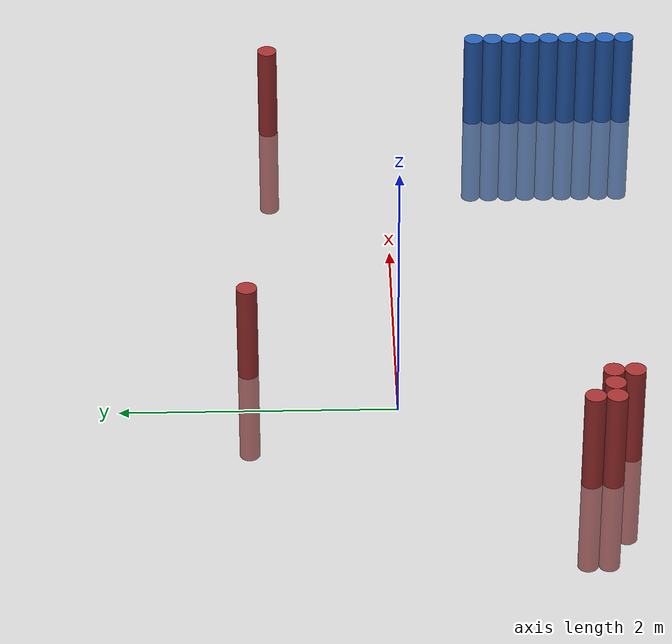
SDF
<sdf version="1.6">
 <world name="default">
  <model name="ground_plane">
   <static>1</static>
   <link name="link">
    <collision name="collision">
     <geometry><plane><normal>0 0 1</normal><size>100 100</size></plane></geometry>
     <surface><friction><ode><mu>100</mu><mu2>50</mu2></ode></friction></surface>
    </collision>
    <visual name="visual">
     <cast_shadows>0</cast_shadows>
     <geometry><plane><normal>0 0 1</normal><size>100 100</size></plane></geometry>
     <material>
      <script><uri>file://media/materials/scripts/gazebo.material</uri><name>Gazebo/Grey</name></script>
     </material>
    </visual>
   </link>
  </model>
  <model name="unit_cylinder_88">
   <static>1</static>
   <pose>3.925000 -1.925000 0.000000 0.000000 0.000000 0.000000</pose>
   <link name="link">
    <inertial>
     <mass>1</mass>
     <inertia><ixx>0.145833</ixx><ixy>0</ixy><ixz>0</ixz><iyy>0.145833</iyy><iyz>0</iyz><izz>0.125</izz></inertia>
    </inertial>
    <collision name="collision">
     <geometry><cylinder><radius>0.075000</radius><length>1.5</length></cylinder></geometry>
    </collision>
    <visual name="visual">
     <geometry><cylinder><radius>0.075000</radius><length>1.5</length></cylinder></geometry>
     <material>
      <ambient>0.152000 0.379000 0.720000 1</ambient>
      <diffuse>0.152000 0.379000 0.720000 1</diffuse>
     </material>
     <material>
      <script><name>Gazebo/Grey</name><uri>file://media/materials/scripts/gazebo.material</uri></script>
     </material>
    </visual>
   </link>
  </model>
  <model name="unit_cylinder_90">
   <static>1</static>
   <pose>3.925000 -1.775000 0.000000 0.000000 0.000000 0.000000</pose>
   <link name="link">
    <inertial>
     <mass>1</mass>
     <inertia><ixx>0.145833</ixx><ixy>0</ixy><ixz>0</ixz><iyy>0.145833</iyy><iyz>0</iyz><izz>0.125</izz></inertia>
    </inertial>
    <collision name="collision">
     <geometry><cylinder><radius>0.075000</radius><length>1.5</length></cylinder></geometry>
    </collision>
    <visual name="visual">
     <geometry><cylinder><radius>0.075000</radius><length>1.5</length></cylinder></geometry>
     <material>
      <ambient>0.152000 0.379000 0.720000 1</ambient>
      <diffuse>0.152000 0.379000 0.720000 1</diffuse>
     </material>
     <material>
      <script><name>Gazebo/Grey</name><uri>file://media/materials/scripts/gazebo.material</uri></script>
     </material>
    </visual>
   </link>
  </model>
  <model name="unit_cylinder_92">
   <static>1</static>
   <pose>3.925000 -1.625000 0.000000 0.000000 0.000000 0.000000</pose>
   <link name="link">
    <inertial>
     <mass>1</mass>
     <inertia><ixx>0.145833</ixx><ixy>0</ixy><ixz>0</ixz><iyy>0.145833</iyy><iyz>0</iyz><izz>0.125</izz></inertia>
    </inertial>
    <collision name="collision">
     <geometry><cylinder><radius>0.075000</radius><length>1.5</length></cylinder></geometry>
    </collision>
    <visual name="visual">
     <geometry><cylinder><radius>0.075000</radius><length>1.5</length></cylinder></geometry>
     <material>
      <ambient>0.152000 0.379000 0.720000 1</ambient>
      <diffuse>0.152000 0.379000 0.720000 1</diffuse>
     </material>
     <material>
      <script><name>Gazebo/Grey</name><uri>file://media/materials/scripts/gazebo.material</uri></script>
     </material>
    </visual>
   </link>
  </model>
  <model name="unit_cylinder_94">
   <static>1</static>
   <pose>3.925000 -1.475000 0.000000 0.000000 0.000000 0.000000</pose>
   <link name="link">
    <inertial>
     <mass>1</mass>
     <inertia><ixx>0.145833</ixx><ixy>0</ixy><ixz>0</ixz><iyy>0.145833</iyy><iyz>0</iyz><izz>0.125</izz></inertia>
    </inertial>
    <collision name="collision">
     <geometry><cylinder><radius>0.075000</radius><length>1.5</length></cylinder></geometry>
    </collision>
    <visual name="visual">
     <geometry><cylinder><radius>0.075000</radius><length>1.5</length></cylinder></geometry>
     <material>
      <ambient>0.152000 0.379000 0.720000 1</ambient>
      <diffuse>0.152000 0.379000 0.720000 1</diffuse>
     </material>
     <material>
      <script><name>Gazebo/Grey</name><uri>file://media/materials/scripts/gazebo.material</uri></script>
     </material>
    </visual>
   </link>
  </model>
  <model name="unit_cylinder_96">
   <static>1</static>
   <pose>3.925000 -1.325000 0.000000 0.000000 0.000000 0.000000</pose>
   <link name="link">
    <inertial>
     <mass>1</mass>
     <inertia><ixx>0.145833</ixx><ixy>0</ixy><ixz>0</ixz><iyy>0.145833</iyy><iyz>0</iyz><izz>0.125</izz></inertia>
    </inertial>
    <collision name="collision">
     <geometry><cylinder><radius>0.075000</radius><length>1.5</length></cylinder></geometry>
    </collision>
    <visual name="visual">
     <geometry><cylinder><radius>0.075000</radius><length>1.5</length></cylinder></geometry>
     <material>
      <ambient>0.152000 0.379000 0.720000 1</ambient>
      <diffuse>0.152000 0.379000 0.720000 1</diffuse>
     </material>
     <material>
      <script><name>Gazebo/Grey</name><uri>file://media/materials/scripts/gazebo.material</uri></script>
     </material>
    </visual>
   </link>
  </model>
  <model name="unit_cylinder_98">
   <static>1</static>
   <pose>3.925000 -1.175000 0.000000 0.000000 0.000000 0.000000</pose>
   <link name="link">
    <inertial>
     <mass>1</mass>
     <inertia><ixx>0.145833</ixx><ixy>0</ixy><ixz>0</ixz><iyy>0.145833</iyy><iyz>0</iyz><izz>0.125</izz></inertia>
    </inertial>
    <collision name="collision">
     <geometry><cylinder><radius>0.075000</radius><length>1.5</length></cylinder></geometry>
    </collision>
    <visual name="visual">
     <geometry><cylinder><radius>0.075000</radius><length>1.5</length></cylinder></geometry>
     <material>
      <ambient>0.152000 0.379000 0.720000 1</ambient>
      <diffuse>0.152000 0.379000 0.720000 1</diffuse>
     </material>
     <material>
      <script><name>Gazebo/Grey</name><uri>file://media/materials/scripts/gazebo.material</uri></script>
     </material>
    </visual>
   </link>
  </model>
  <model name="unit_cylinder_100">
   <static>1</static>
   <pose>3.925000 -1.025000 0.000000 0.000000 0.000000 0.000000</pose>
   <link name="link">
    <inertial>
     <mass>1</mass>
     <inertia><ixx>0.145833</ixx><ixy>0</ixy><ixz>0</ixz><iyy>0.145833</iyy><iyz>0</iyz><izz>0.125</izz></inertia>
    </inertial>
    <collision name="collision">
     <geometry><cylinder><radius>0.075000</radius><length>1.5</length></cylinder></geometry>
    </collision>
    <visual name="visual">
     <geometry><cylinder><radius>0.075000</radius><length>1.5</length></cylinder></geometry>
     <material>
      <ambient>0.152000 0.379000 0.720000 1</ambient>
      <diffuse>0.152000 0.379000 0.720000 1</diffuse>
     </material>
     <material>
      <script><name>Gazebo/Grey</name><uri>file://media/materials/scripts/gazebo.material</uri></script>
     </material>
    </visual>
   </link>
  </model>
  <model name="unit_cylinder_102">
   <static>1</static>
   <pose>3.925000 -0.875000 0.000000 0.000000 0.000000 0.000000</pose>
   <link name="link">
    <inertial>
     <mass>1</mass>
     <inertia><ixx>0.145833</ixx><ixy>0</ixy><ixz>0</ixz><iyy>0.145833</iyy><iyz>0</iyz><izz>0.125</izz></inertia>
    </inertial>
    <collision name="collision">
     <geometry><cylinder><radius>0.075000</radius><length>1.5</length></cylinder></geometry>
    </collision>
    <visual name="visual">
     <geometry><cylinder><radius>0.075000</radius><length>1.5</length></cylinder></geometry>
     <material>
      <ambient>0.152000 0.379000 0.720000 1</ambient>
      <diffuse>0.152000 0.379000 0.720000 1</diffuse>
     </material>
     <material>
      <script><name>Gazebo/Grey</name><uri>file://media/materials/scripts/gazebo.material</uri></script>
     </material>
    </visual>
   </link>
  </model>
  <model name="unit_cylinder_104">
   <static>1</static>
   <pose>3.925000 -0.725000 0.000000 0.000000 0.000000 0.000000</pose>
   <link name="link">
    <inertial>
     <mass>1</mass>
     <inertia><ixx>0.145833</ixx><ixy>0</ixy><ixz>0</ixz><iyy>0.145833</iyy><iyz>0</iyz><izz>0.125</izz></inertia>
    </inertial>
    <collision name="collision">
     <geometry><cylinder><radius>0.075000</radius><length>1.5</length></cylinder></geometry>
    </collision>
    <visual name="visual">
     <geometry><cylinder><radius>0.075000</radius><length>1.5</length></cylinder></geometry>
     <material>
      <ambient>0.152000 0.379000 0.720000 1</ambient>
      <diffuse>0.152000 0.379000 0.720000 1</diffuse>
     </material>
     <material>
      <script><name>Gazebo/Grey</name><uri>file://media/materials/scripts/gazebo.material</uri></script>
     </material>
    </visual>
   </link>
  </model>
  <model name="unit_cylinder_319">
   <static>1</static>
   <pose>-0.875000 -1.475000 0.000000 0.000000 0.000000 0.000000</pose>
   <link name="link">
    <inertial>
     <mass>1</mass>
     <inertia><ixx>0.145833</ixx><ixy>0</ixy><ixz>0</ixz><iyy>0.145833</iyy><iyz>0</iyz><izz>0.125</izz></inertia>
    </inertial>
    <collision name="collision">
     <geometry><cylinder><radius>0.075000</radius><length>1.5</length></cylinder></geometry>
    </collision>
    <visual name="visual">
     <geometry><cylinder><radius>0.075000</radius><length>1.5</length></cylinder></geometry>
     <material>
      <ambient>0.648000 0.192000 0.192000 1</ambient>
      <diffuse>0.648000 0.192000 0.192000 1</diffuse>
     </material>
     <material>
      <script><name>Gazebo/Grey</name><uri>file://media/materials/scripts/gazebo.material</uri></script>
     </material>
    </visual>
   </link>
  </model>
  <model name="unit_cylinder_320">
   <static>1</static>
   <pose>-0.875000 -1.325000 0.000000 0.000000 0.000000 0.000000</pose>
   <link name="link">
    <inertial>
     <mass>1</mass>
     <inertia><ixx>0.145833</ixx><ixy>0</ixy><ixz>0</ixz><iyy>0.145833</iyy><iyz>0</iyz><izz>0.125</izz></inertia>
    </inertial>
    <collision name="collision">
     <geometry><cylinder><radius>0.075000</radius><length>1.5</length></cylinder></geometry>
    </collision>
    <visual name="visual">
     <geometry><cylinder><radius>0.075000</radius><length>1.5</length></cylinder></geometry>
     <material>
      <ambient>0.648000 0.192000 0.192000 1</ambient>
      <diffuse>0.648000 0.192000 0.192000 1</diffuse>
     </material>
     <material>
      <script><name>Gazebo/Grey</name><uri>file://media/materials/scripts/gazebo.material</uri></script>
     </material>
    </visual>
   </link>
  </model>
  <model name="unit_cylinder_322">
   <static>1</static>
   <pose>-0.725000 -1.475000 0.000000 0.000000 0.000000 0.000000</pose>
   <link name="link">
    <inertial>
     <mass>1</mass>
     <inertia><ixx>0.145833</ixx><ixy>0</ixy><ixz>0</ixz><iyy>0.145833</iyy><iyz>0</iyz><izz>0.125</izz></inertia>
    </inertial>
    <collision name="collision">
     <geometry><cylinder><radius>0.075000</radius><length>1.5</length></cylinder></geometry>
    </collision>
    <visual name="visual">
     <geometry><cylinder><radius>0.075000</radius><length>1.5</length></cylinder></geometry>
     <material>
      <ambient>0.648000 0.192000 0.192000 1</ambient>
      <diffuse>0.648000 0.192000 0.192000 1</diffuse>
     </material>
     <material>
      <script><name>Gazebo/Grey</name><uri>file://media/materials/scripts/gazebo.material</uri></script>
     </material>
    </visual>
   </link>
  </model>
  <model name="unit_cylinder_325">
   <static>1</static>
   <pose>-0.575000 -1.625000 0.000000 0.000000 0.000000 0.000000</pose>
   <link name="link">
    <inertial>
     <mass>1</mass>
     <inertia><ixx>0.145833</ixx><ixy>0</ixy><ixz>0</ixz><iyy>0.145833</iyy><iyz>0</iyz><izz>0.125</izz></inertia>
    </inertial>
    <collision name="collision">
     <geometry><cylinder><radius>0.075000</radius><length>1.5</length></cylinder></geometry>
    </collision>
    <visual name="visual">
     <geometry><cylinder><radius>0.075000</radius><length>1.5</length></cylinder></geometry>
     <material>
      <ambient>0.648000 0.192000 0.192000 1</ambient>
      <diffuse>0.648000 0.192000 0.192000 1</diffuse>
     </material>
     <material>
      <script><name>Gazebo/Grey</name><uri>file://media/materials/scripts/gazebo.material</uri></script>
     </material>
    </visual>
   </link>
  </model>
  <model name="unit_cylinder_326">
   <static>1</static>
   <pose>-0.575000 -1.475000 0.000000 0.000000 0.000000 0.000000</pose>
   <link name="link">
    <inertial>
     <mass>1</mass>
     <inertia><ixx>0.145833</ixx><ixy>0</ixy><ixz>0</ixz><iyy>0.145833</iyy><iyz>0</iyz><izz>0.125</izz></inertia>
    </inertial>
    <collision name="collision">
     <geometry><cylinder><radius>0.075000</radius><length>1.5</length></cylinder></geometry>
    </collision>
    <visual name="visual">
     <geometry><cylinder><radius>0.075000</radius><length>1.5</length></cylinder></geometry>
     <material>
      <ambient>0.648000 0.192000 0.192000 1</ambient>
      <diffuse>0.648000 0.192000 0.192000 1</diffuse>
     </material>
     <material>
      <script><name>Gazebo/Grey</name><uri>file://media/materials/scripts/gazebo.material</uri></script>
     </material>
    </visual>
   </link>
  </model>
  <model name="unit_cylinder_331">
   <static>1</static>
   <pose>0.475000 1.075000 0.000000 0.000000 0.000000 0.000000</pose>
   <link name="link">
    <inertial>
     <mass>1</mass>
     <inertia><ixx>0.145833</ixx><ixy>0</ixy><ixz>0</ixz><iyy>0.145833</iyy><iyz>0</iyz><izz>0.125</izz></inertia>
    </inertial>
    <collision name="collision">
     <geometry><cylinder><radius>0.075000</radius><length>1.5</length></cylinder></geometry>
    </collision>
    <visual name="visual">
     <geometry><cylinder><radius>0.075000</radius><length>1.5</length></cylinder></geometry>
     <material>
      <ambient>0.648000 0.192000 0.192000 1</ambient>
      <diffuse>0.648000 0.192000 0.192000 1</diffuse>
     </material>
     <material>
      <script><name>Gazebo/Grey</name><uri>file://media/materials/scripts/gazebo.material</uri></script>
     </material>
    </visual>
   </link>
  </model>
  <model name="unit_cylinder_347">
   <static>1</static>
   <pose>3.775000 0.925000 0.000000 0.000000 0.000000 0.000000</pose>
   <link name="link">
    <inertial>
     <mass>1</mass>
     <inertia><ixx>0.145833</ixx><ixy>0</ixy><ixz>0</ixz><iyy>0.145833</iyy><iyz>0</iyz><izz>0.125</izz></inertia>
    </inertial>
    <collision name="collision">
     <geometry><cylinder><radius>0.075000</radius><length>1.5</length></cylinder></geometry>
    </collision>
    <visual name="visual">
     <geometry><cylinder><radius>0.075000</radius><length>1.5</length></cylinder></geometry>
     <material>
      <ambient>0.648000 0.192000 0.192000 1</ambient>
      <diffuse>0.648000 0.192000 0.192000 1</diffuse>
     </material>
     <material>
      <script><name>Gazebo/Grey</name><uri>file://media/materials/scripts/gazebo.material</uri></script>
     </material>
    </visual>
   </link>
  </model>
  <model name="unit_cylinder_355">
   <static>1</static>
   <pose>3.925000 -1.925000 0.000000 0.000000 0.000000 0.000000</pose>
   <link name="link">
    <inertial>
     <mass>1</mass>
     <inertia><ixx>0.145833</ixx><ixy>0</ixy><ixz>0</ixz><iyy>0.145833</iyy><iyz>0</iyz><izz>0.125</izz></inertia>
    </inertial>
    <collision name="collision">
     <geometry><cylinder><radius>0.075000</radius><length>1.5</length></cylinder></geometry>
    </collision>
    <visual name="visual">
     <geometry><cylinder><radius>0.075000</radius><length>1.5</length></cylinder></geometry>
     <material>
      <ambient>0.152000 0.379000 0.720000 1</ambient>
      <diffuse>0.152000 0.379000 0.720000 1</diffuse>
     </material>
     <material>
      <script><name>Gazebo/Grey</name><uri>file://media/materials/scripts/gazebo.material</uri></script>
     </material>
    </visual>
   </link>
  </model>
  <model name="unit_cylinder_356">
   <static>1</static>
   <pose>3.925000 -1.775000 0.000000 0.000000 0.000000 0.000000</pose>
   <link name="link">
    <inertial>
     <mass>1</mass>
     <inertia><ixx>0.145833</ixx><ixy>0</ixy><ixz>0</ixz><iyy>0.145833</iyy><iyz>0</iyz><izz>0.125</izz></inertia>
    </inertial>
    <collision name="collision">
     <geometry><cylinder><radius>0.075000</radius><length>1.5</length></cylinder></geometry>
    </collision>
    <visual name="visual">
     <geometry><cylinder><radius>0.075000</radius><length>1.5</length></cylinder></geometry>
     <material>
      <ambient>0.152000 0.379000 0.720000 1</ambient>
      <diffuse>0.152000 0.379000 0.720000 1</diffuse>
     </material>
     <material>
      <script><name>Gazebo/Grey</name><uri>file://media/materials/scripts/gazebo.material</uri></script>
     </material>
    </visual>
   </link>
  </model>
  <model name="unit_cylinder_357">
   <static>1</static>
   <pose>3.925000 -1.625000 0.000000 0.000000 0.000000 0.000000</pose>
   <link name="link">
    <inertial>
     <mass>1</mass>
     <inertia><ixx>0.145833</ixx><ixy>0</ixy><ixz>0</ixz><iyy>0.145833</iyy><iyz>0</iyz><izz>0.125</izz></inertia>
    </inertial>
    <collision name="collision">
     <geometry><cylinder><radius>0.075000</radius><length>1.5</length></cylinder></geometry>
    </collision>
    <visual name="visual">
     <geometry><cylinder><radius>0.075000</radius><length>1.5</length></cylinder></geometry>
     <material>
      <ambient>0.152000 0.379000 0.720000 1</ambient>
      <diffuse>0.152000 0.379000 0.720000 1</diffuse>
     </material>
     <material>
      <script><name>Gazebo/Grey</name><uri>file://media/materials/scripts/gazebo.material</uri></script>
     </material>
    </visual>
   </link>
  </model>
  <model name="unit_cylinder_358">
   <static>1</static>
   <pose>3.925000 -1.475000 0.000000 0.000000 0.000000 0.000000</pose>
   <link name="link">
    <inertial>
     <mass>1</mass>
     <inertia><ixx>0.145833</ixx><ixy>0</ixy><ixz>0</ixz><iyy>0.145833</iyy><iyz>0</iyz><izz>0.125</izz></inertia>
    </inertial>
    <collision name="collision">
     <geometry><cylinder><radius>0.075000</radius><length>1.5</length></cylinder></geometry>
    </collision>
    <visual name="visual">
     <geometry><cylinder><radius>0.075000</radius><length>1.5</length></cylinder></geometry>
     <material>
      <ambient>0.152000 0.379000 0.720000 1</ambient>
      <diffuse>0.152000 0.379000 0.720000 1</diffuse>
     </material>
     <material>
      <script><name>Gazebo/Grey</name><uri>file://media/materials/scripts/gazebo.material</uri></script>
     </material>
    </visual>
   </link>
  </model>
  <model name="unit_cylinder_359">
   <static>1</static>
   <pose>3.925000 -1.325000 0.000000 0.000000 0.000000 0.000000</pose>
   <link name="link">
    <inertial>
     <mass>1</mass>
     <inertia><ixx>0.145833</ixx><ixy>0</ixy><ixz>0</ixz><iyy>0.145833</iyy><iyz>0</iyz><izz>0.125</izz></inertia>
    </inertial>
    <collision name="collision">
     <geometry><cylinder><radius>0.075000</radius><length>1.5</length></cylinder></geometry>
    </collision>
    <visual name="visual">
     <geometry><cylinder><radius>0.075000</radius><length>1.5</length></cylinder></geometry>
     <material>
      <ambient>0.152000 0.379000 0.720000 1</ambient>
      <diffuse>0.152000 0.379000 0.720000 1</diffuse>
     </material>
     <material>
      <script><name>Gazebo/Grey</name><uri>file://media/materials/scripts/gazebo.material</uri></script>
     </material>
    </visual>
   </link>
  </model>
  <model name="unit_cylinder_360">
   <static>1</static>
   <pose>3.925000 -1.175000 0.000000 0.000000 0.000000 0.000000</pose>
   <link name="link">
    <inertial>
     <mass>1</mass>
     <inertia><ixx>0.145833</ixx><ixy>0</ixy><ixz>0</ixz><iyy>0.145833</iyy><iyz>0</iyz><izz>0.125</izz></inertia>
    </inertial>
    <collision name="collision">
     <geometry><cylinder><radius>0.075000</radius><length>1.5</length></cylinder></geometry>
    </collision>
    <visual name="visual">
     <geometry><cylinder><radius>0.075000</radius><length>1.5</length></cylinder></geometry>
     <material>
      <ambient>0.152000 0.379000 0.720000 1</ambient>
      <diffuse>0.152000 0.379000 0.720000 1</diffuse>
     </material>
     <material>
      <script><name>Gazebo/Grey</name><uri>file://media/materials/scripts/gazebo.material</uri></script>
     </material>
    </visual>
   </link>
  </model>
  <model name="unit_cylinder_361">
   <static>1</static>
   <pose>3.925000 -1.025000 0.000000 0.000000 0.000000 0.000000</pose>
   <link name="link">
    <inertial>
     <mass>1</mass>
     <inertia><ixx>0.145833</ixx><ixy>0</ixy><ixz>0</ixz><iyy>0.145833</iyy><iyz>0</iyz><izz>0.125</izz></inertia>
    </inertial>
    <collision name="collision">
     <geometry><cylinder><radius>0.075000</radius><length>1.5</length></cylinder></geometry>
    </collision>
    <visual name="visual">
     <geometry><cylinder><radius>0.075000</radius><length>1.5</length></cylinder></geometry>
     <material>
      <ambient>0.152000 0.379000 0.720000 1</ambient>
      <diffuse>0.152000 0.379000 0.720000 1</diffuse>
     </material>
     <material>
      <script><name>Gazebo/Grey</name><uri>file://media/materials/scripts/gazebo.material</uri></script>
     </material>
    </visual>
   </link>
  </model>
  <model name="unit_cylinder_362">
   <static>1</static>
   <pose>3.925000 -0.875000 0.000000 0.000000 0.000000 0.000000</pose>
   <link name="link">
    <inertial>
     <mass>1</mass>
     <inertia><ixx>0.145833</ixx><ixy>0</ixy><ixz>0</ixz><iyy>0.145833</iyy><iyz>0</iyz><izz>0.125</izz></inertia>
    </inertial>
    <collision name="collision">
     <geometry><cylinder><radius>0.075000</radius><length>1.5</length></cylinder></geometry>
    </collision>
    <visual name="visual">
     <geometry><cylinder><radius>0.075000</radius><length>1.5</length></cylinder></geometry>
     <material>
      <ambient>0.152000 0.379000 0.720000 1</ambient>
      <diffuse>0.152000 0.379000 0.720000 1</diffuse>
     </material>
     <material>
      <script><name>Gazebo/Grey</name><uri>file://media/materials/scripts/gazebo.material</uri></script>
     </material>
    </visual>
   </link>
  </model>
  <model name="unit_cylinder_363">
   <static>1</static>
   <pose>3.925000 -0.725000 0.000000 0.000000 0.000000 0.000000</pose>
   <link name="link">
    <inertial>
     <mass>1</mass>
     <inertia><ixx>0.145833</ixx><ixy>0</ixy><ixz>0</ixz><iyy>0.145833</iyy><iyz>0</iyz><izz>0.125</izz></inertia>
    </inertial>
    <collision name="collision">
     <geometry><cylinder><radius>0.075000</radius><length>1.5</length></cylinder></geometry>
    </collision>
    <visual name="visual">
     <geometry><cylinder><radius>0.075000</radius><length>1.5</length></cylinder></geometry>
     <material>
      <ambient>0.152000 0.379000 0.720000 1</ambient>
      <diffuse>0.152000 0.379000 0.720000 1</diffuse>
     </material>
     <material>
      <script><name>Gazebo/Grey</name><uri>file://media/materials/scripts/gazebo.material</uri></script>
     </material>
    </visual>
   </link>
  </model>
 </world>
</sdf>
